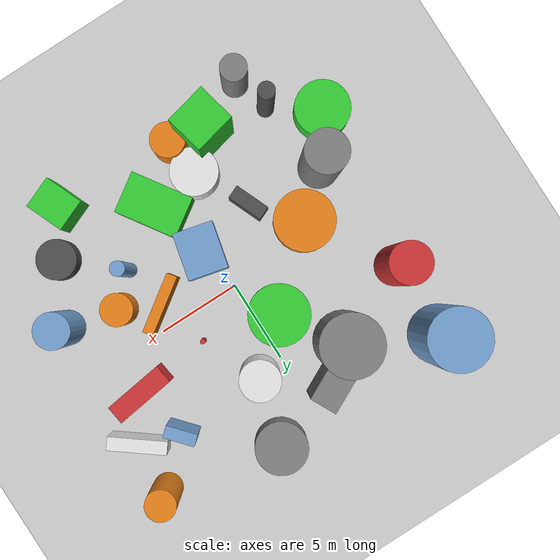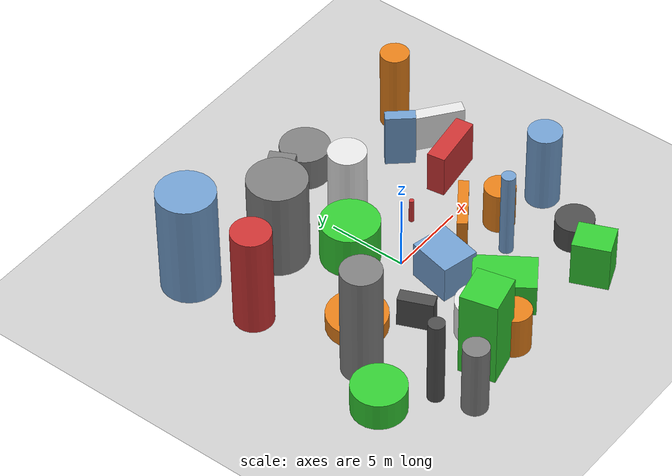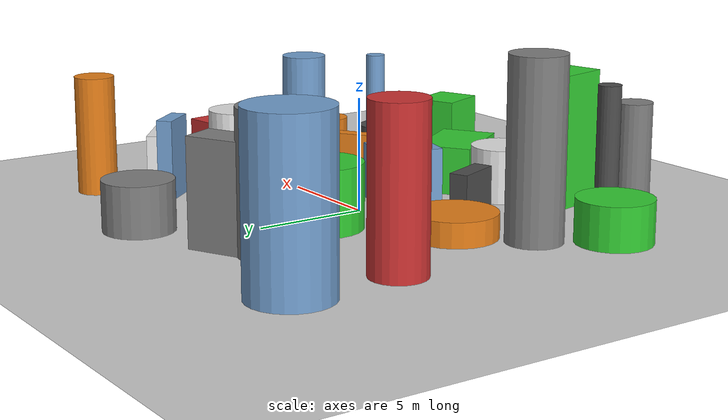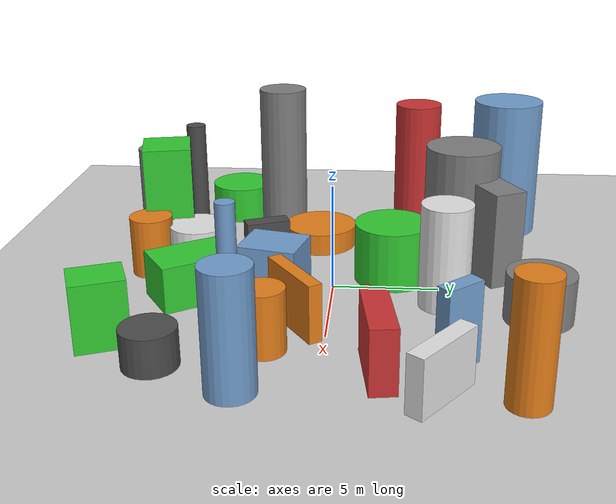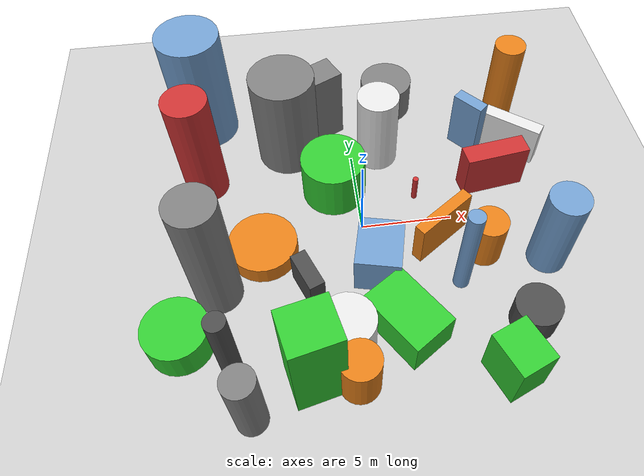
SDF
<?xml version='1.0'?>
<sdf version='1.6'>
  <world name='default'>
    <!-- Sun light -->
    <light name='sun' type='directional'>
      <cast_shadows>1</cast_shadows>
      <pose>0 0 10 0 0 0</pose>
      <diffuse>0.8 0.8 0.8 1</diffuse>
      <specular>0.2 0.2 0.2 1</specular>
      <attenuation>
        <range>1000</range>
        <constant>0.9</constant>
        <linear>0.01</linear>
        <quadratic>0.001</quadratic>
      </attenuation>
      <direction>-0.5 0.1 -0.9</direction>
    </light>

    <!-- Ground plane -->
    <model name='ground_plane'>
      <static>1</static>
      <link name='link'>
        <collision name='collision'>
          <geometry>
            <plane>
              <normal>0 0 1</normal>
              <size>100 100</size>
            </plane>
          </geometry>
          <surface>
            <contact>
              <collide_bitmask>65535</collide_bitmask>
              <ode/>
            </contact>
            <friction>
              <ode>
                <mu>100</mu>
                <mu2>50</mu2>
              </ode>
              <torsional><ode/></torsional>
            </friction>
            <bounce/>
          </surface>
          <max_contacts>10</max_contacts>
        </collision>
        <visual name='visual'>
          <cast_shadows>0</cast_shadows>
          <geometry>
            <plane>
              <normal>0 0 1</normal>
              <size>100 100</size>
            </plane>
          </geometry>
          <material>
            <script>
              <uri>file://media/materials/scripts/gazebo.material</uri>
              <n>Gazebo/Grey</n>
            </script>
          </material>
        </visual>
      </link>
    </model>

    <!-- Environment -->
    <magnetic_field>6e-06 2.3e-05 -4.2e-05</magnetic_field>
    <atmosphere type='adiabatic'/>
    <physics name='default_physics' default='0' type='ode'>
      <gravity>0 0 -9.8</gravity>
      <max_step_size>0.004</max_step_size>
      <real_time_factor>1</real_time_factor>
      <real_time_update_rate>250</real_time_update_rate>
    </physics>
    <scene>
      <ambient>0.4 0.4 0.4 1</ambient>
      <background>0.7 0.7 0.7 1</background>
      <shadows>1</shadows>
    </scene>
    <wind/>
    <spherical_coordinates>
      <surface_model>EARTH_WGS84</surface_model>
      <latitude_deg>0</latitude_deg>
      <longitude_deg>0</longitude_deg>
      <elevation>0</elevation>
      <heading_deg>0</heading_deg>
    </spherical_coordinates>

    <!-- ============ OBSTACLES (29) ============ -->
    <model name='obs_00'>
      <static>1</static>
      <link name='link'>
        <visual name='visual'>
          <geometry>
            <cylinder>
              <radius>0.5015</radius>
              <length>5.8804</length>
            </cylinder>
          </geometry>
          <material>
            <script>
              <n>Gazebo/DarkGrey</n>
              <uri>file://media/materials/scripts/gazebo.material</uri>
            </script>
            <ambient>0.3 0.3 0.3 1</ambient>
          </material>
        </visual>
        <collision name='collision'>
          <geometry>
            <cylinder>
              <radius>0.5015</radius>
              <length>5.8804</length>
            </cylinder>
          </geometry>
          <max_contacts>10</max_contacts>
          <surface>
            <contact><ode/></contact>
            <bounce/>
            <friction>
              <ode><mu>1</mu><mu2>1</mu2></ode>
              <torsional><ode/></torsional>
            </friction>
          </surface>
        </collision>
      </link>
      <pose>-7.1669 -7.7816 2.9402 0 0 0.6458</pose>
    </model>

    <model name='obs_01'>
      <static>1</static>
      <link name='link'>
        <visual name='visual'>
          <geometry>
            <box>
              <size>2.3904 2.8121 2.4870</size>
            </box>
          </geometry>
          <material>
            <script>
              <n>Gazebo/Blue</n>
              <uri>file://media/materials/scripts/gazebo.material</uri>
            </script>
            <ambient>0.447 0.624 0.812 1</ambient>
          </material>
        </visual>
        <collision name='collision'>
          <geometry>
            <box>
              <size>2.3904 2.8121 2.4870</size>
            </box>
          </geometry>
          <max_contacts>10</max_contacts>
          <surface>
            <contact><ode/></contact>
            <bounce/>
            <friction>
              <ode><mu>1</mu><mu2>1</mu2></ode>
              <torsional><ode/></torsional>
            </friction>
          </surface>
        </collision>
      </link>
      <pose>0.5259 -2.7022 1.2435 0 0 2.9078</pose>
    </model>

    <model name='obs_02'>
      <static>1</static>
      <link name='link'>
        <visual name='visual'>
          <geometry>
            <cylinder>
              <radius>1.2078</radius>
              <length>6.8790</length>
            </cylinder>
          </geometry>
          <material>
            <script>
              <n>Gazebo/Red</n>
              <uri>file://media/materials/scripts/gazebo.material</uri>
            </script>
            <ambient>0.8 0.2 0.2 1</ambient>
          </material>
        </visual>
        <collision name='collision'>
          <geometry>
            <cylinder>
              <radius>1.2078</radius>
              <length>6.8790</length>
            </cylinder>
          </geometry>
          <max_contacts>10</max_contacts>
          <surface>
            <contact><ode/></contact>
            <bounce/>
            <friction>
              <ode><mu>1</mu><mu2>1</mu2></ode>
              <torsional><ode/></torsional>
            </friction>
          </surface>
        </collision>
      </link>
      <pose>-8.5494 4.0908 3.4395 0 0 0.1559</pose>
    </model>

    <model name='obs_03'>
      <static>1</static>
      <link name='link'>
        <visual name='visual'>
          <geometry>
            <cylinder>
              <radius>0.1571</radius>
              <length>1.6134</length>
            </cylinder>
          </geometry>
          <material>
            <script>
              <n>Gazebo/Red</n>
              <uri>file://media/materials/scripts/gazebo.material</uri>
            </script>
            <ambient>0.8 0.2 0.2 1</ambient>
          </material>
        </visual>
        <collision name='collision'>
          <geometry>
            <cylinder>
              <radius>0.1571</radius>
              <length>1.6134</length>
            </cylinder>
          </geometry>
          <max_contacts>10</max_contacts>
          <surface>
            <contact><ode/></contact>
            <bounce/>
            <friction>
              <ode><mu>1</mu><mu2>1</mu2></ode>
              <torsional><ode/></torsional>
            </friction>
          </surface>
        </collision>
      </link>
      <pose>3.2428 1.7203 0.8067 0 0 0.1712</pose>
    </model>

    <model name='obs_04'>
      <static>1</static>
      <link name='link'>
        <visual name='visual'>
          <geometry>
            <box>
              <size>2.1811 0.8395 2.0348</size>
            </box>
          </geometry>
          <material>
            <script>
              <n>Gazebo/DarkGrey</n>
              <uri>file://media/materials/scripts/gazebo.material</uri>
            </script>
            <ambient>0.3 0.3 0.3 1</ambient>
          </material>
        </visual>
        <collision name='collision'>
          <geometry>
            <box>
              <size>2.1811 0.8395 2.0348</size>
            </box>
          </geometry>
          <max_contacts>10</max_contacts>
          <surface>
            <contact><ode/></contact>
            <bounce/>
            <friction>
              <ode><mu>1</mu><mu2>1</mu2></ode>
              <torsional><ode/></torsional>
            </friction>
          </surface>
        </collision>
      </link>
      <pose>-3.2688 -3.5479 1.0174 0 0 1.9638</pose>
    </model>

    <model name='obs_05'>
      <static>1</static>
      <link name='link'>
        <visual name='visual'>
          <geometry>
            <box>
              <size>0.7868 3.4532 2.5418</size>
            </box>
          </geometry>
          <material>
            <script>
              <n>Gazebo/White</n>
              <uri>file://media/materials/scripts/gazebo.material</uri>
            </script>
            <ambient>0.9 0.9 0.9 1</ambient>
          </material>
        </visual>
        <collision name='collision'>
          <geometry>
            <box>
              <size>0.7868 3.4532 2.5418</size>
            </box>
          </geometry>
          <max_contacts>10</max_contacts>
          <surface>
            <contact><ode/></contact>
            <bounce/>
            <friction>
              <ode><mu>1</mu><mu2>1</mu2></ode>
              <torsional><ode/></torsional>
            </friction>
          </surface>
        </collision>
      </link>
      <pose>9.5172 4.6470 1.2709 0 0 0.9168</pose>
    </model>

    <model name='obs_06'>
      <static>1</static>
      <link name='link'>
        <visual name='visual'>
          <geometry>
            <cylinder>
              <radius>1.8055</radius>
              <length>2.8550</length>
            </cylinder>
          </geometry>
          <material>
            <script>
              <n>Gazebo/Green</n>
              <uri>file://media/materials/scripts/gazebo.material</uri>
            </script>
            <ambient>0.2 0.8 0.2 1</ambient>
          </material>
        </visual>
        <collision name='collision'>
          <geometry>
            <cylinder>
              <radius>1.8055</radius>
              <length>2.8550</length>
            </cylinder>
          </geometry>
          <max_contacts>10</max_contacts>
          <surface>
            <contact><ode/></contact>
            <bounce/>
            <friction>
              <ode><mu>1</mu><mu2>1</mu2></ode>
              <torsional><ode/></torsional>
            </friction>
          </surface>
        </collision>
      </link>
      <pose>-1.2626 2.7853 1.4275 0 0 1.4795</pose>
    </model>

    <model name='obs_07'>
      <static>1</static>
      <link name='link'>
        <visual name='visual'>
          <geometry>
            <box>
              <size>1.1471 3.5992 2.8470</size>
            </box>
          </geometry>
          <material>
            <script>
              <n>Gazebo/Red</n>
              <uri>file://media/materials/scripts/gazebo.material</uri>
            </script>
            <ambient>0.8 0.2 0.2 1</ambient>
          </material>
        </visual>
        <collision name='collision'>
          <geometry>
            <box>
              <size>1.1471 3.5992 2.8470</size>
            </box>
          </geometry>
          <max_contacts>10</max_contacts>
          <surface>
            <contact><ode/></contact>
            <bounce/>
            <friction>
              <ode><mu>1</mu><mu2>1</mu2></ode>
              <torsional><ode/></torsional>
            </friction>
          </surface>
        </collision>
      </link>
      <pose>7.7920 2.2742 1.4235 0 0 1.7094</pose>
    </model>

    <model name='obs_08'>
      <static>1</static>
      <link name='link'>
        <visual name='visual'>
          <geometry>
            <cylinder>
              <radius>0.9635</radius>
              <length>2.8438</length>
            </cylinder>
          </geometry>
          <material>
            <script>
              <n>Gazebo/Orange</n>
              <uri>file://media/materials/scripts/gazebo.material</uri>
            </script>
            <ambient>0.9 0.5 0.1 1</ambient>
          </material>
        </visual>
        <collision name='collision'>
          <geometry>
            <cylinder>
              <radius>0.9635</radius>
              <length>2.8438</length>
            </cylinder>
          </geometry>
          <max_contacts>10</max_contacts>
          <surface>
            <contact><ode/></contact>
            <bounce/>
            <friction>
              <ode><mu>1</mu><mu2>1</mu2></ode>
              <torsional><ode/></torsional>
            </friction>
          </surface>
        </collision>
      </link>
      <pose>6.2891 -2.4323 1.4219 0 0 0.1402</pose>
    </model>

    <model name='obs_09'>
      <static>1</static>
      <link name='link'>
        <visual name='visual'>
          <geometry>
            <cylinder>
              <radius>0.4296</radius>
              <length>5.8753</length>
            </cylinder>
          </geometry>
          <material>
            <script>
              <n>Gazebo/Blue</n>
              <uri>file://media/materials/scripts/gazebo.material</uri>
            </script>
            <ambient>0.447 0.624 0.812 1</ambient>
          </material>
        </visual>
        <collision name='collision'>
          <geometry>
            <cylinder>
              <radius>0.4296</radius>
              <length>5.8753</length>
            </cylinder>
          </geometry>
          <max_contacts>10</max_contacts>
          <surface>
            <contact><ode/></contact>
            <bounce/>
            <friction>
              <ode><mu>1</mu><mu2>1</mu2></ode>
              <torsional><ode/></torsional>
            </friction>
          </surface>
        </collision>
      </link>
      <pose>4.6799 -4.1097 2.9376 0 0 1.7726</pose>
    </model>

    <model name='obs_10'>
      <static>1</static>
      <link name='link'>
        <visual name='visual'>
          <geometry>
            <cylinder>
              <radius>0.7860</radius>
              <length>4.7901</length>
            </cylinder>
          </geometry>
          <material>
            <script>
              <n>Gazebo/Grey</n>
              <uri>file://media/materials/scripts/gazebo.material</uri>
            </script>
            <ambient>0.5 0.5 0.5 1</ambient>
          </material>
        </visual>
        <collision name='collision'>
          <geometry>
            <cylinder>
              <radius>0.7860</radius>
              <length>4.7901</length>
            </cylinder>
          </geometry>
          <max_contacts>10</max_contacts>
          <surface>
            <contact><ode/></contact>
            <bounce/>
            <friction>
              <ode><mu>1</mu><mu2>1</mu2></ode>
              <torsional><ode/></torsional>
            </friction>
          </surface>
        </collision>
      </link>
      <pose>-6.4458 -9.9640 2.3951 0 0 0.2693</pose>
    </model>

    <model name='obs_11'>
      <static>1</static>
      <link name='link'>
        <visual name='visual'>
          <geometry>
            <box>
              <size>0.7134 1.8549 3.6129</size>
            </box>
          </geometry>
          <material>
            <script>
              <n>Gazebo/Blue</n>
              <uri>file://media/materials/scripts/gazebo.material</uri>
            </script>
            <ambient>0.447 0.624 0.812 1</ambient>
          </material>
        </visual>
        <collision name='collision'>
          <geometry>
            <box>
              <size>0.7134 1.8549 3.6129</size>
            </box>
          </geometry>
          <max_contacts>10</max_contacts>
          <surface>
            <contact><ode/></contact>
            <bounce/>
            <friction>
              <ode><mu>1</mu><mu2>1</mu2></ode>
              <torsional><ode/></torsional>
            </friction>
          </surface>
        </collision>
      </link>
      <pose>7.0151 5.4166 1.8065 0 0 0.7148</pose>
    </model>

    <model name='obs_12'>
      <static>1</static>
      <link name='link'>
        <visual name='visual'>
          <geometry>
            <box>
              <size>3.7773 2.5045 2.1782</size>
            </box>
          </geometry>
          <material>
            <script>
              <n>Gazebo/Green</n>
              <uri>file://media/materials/scripts/gazebo.material</uri>
            </script>
            <ambient>0.2 0.8 0.2 1</ambient>
          </material>
        </visual>
        <collision name='collision'>
          <geometry>
            <box>
              <size>3.7773 2.5045 2.1782</size>
            </box>
          </geometry>
          <max_contacts>10</max_contacts>
          <surface>
            <contact><ode/></contact>
            <bounce/>
            <friction>
              <ode><mu>1</mu><mu2>1</mu2></ode>
              <torsional><ode/></torsional>
            </friction>
          </surface>
        </collision>
      </link>
      <pose>1.3497 -6.3584 1.0891 0 0 2.1585</pose>
    </model>

    <model name='obs_13'>
      <static>1</static>
      <link name='link'>
        <visual name='visual'>
          <geometry>
            <cylinder>
              <radius>1.8201</radius>
              <length>6.0001</length>
            </cylinder>
          </geometry>
          <material>
            <script>
              <n>Gazebo/Grey</n>
              <uri>file://media/materials/scripts/gazebo.material</uri>
            </script>
            <ambient>0.5 0.5 0.5 1</ambient>
          </material>
        </visual>
        <collision name='collision'>
          <geometry>
            <cylinder>
              <radius>1.8201</radius>
              <length>6.0001</length>
            </cylinder>
          </geometry>
          <max_contacts>10</max_contacts>
          <surface>
            <contact><ode/></contact>
            <bounce/>
            <friction>
              <ode><mu>1</mu><mu2>1</mu2></ode>
              <torsional><ode/></torsional>
            </friction>
          </surface>
        </collision>
      </link>
      <pose>-3.6357 6.1761 3.0001 0 0 0.2480</pose>
    </model>

    <model name='obs_14'>
      <static>1</static>
      <link name='link'>
        <visual name='visual'>
          <geometry>
            <box>
              <size>2.3089 2.5002 5.9138</size>
            </box>
          </geometry>
          <material>
            <script>
              <n>Gazebo/Green</n>
              <uri>file://media/materials/scripts/gazebo.material</uri>
            </script>
            <ambient>0.2 0.8 0.2 1</ambient>
          </material>
        </visual>
        <collision name='collision'>
          <geometry>
            <box>
              <size>2.3089 2.5002 5.9138</size>
            </box>
          </geometry>
          <max_contacts>10</max_contacts>
          <surface>
            <contact><ode/></contact>
            <bounce/>
            <friction>
              <ode><mu>1</mu><mu2>1</mu2></ode>
              <torsional><ode/></torsional>
            </friction>
          </surface>
        </collision>
      </link>
      <pose>-3.3766 -8.4439 2.9569 0 0 1.7945</pose>
    </model>

    <model name='obs_15'>
      <static>1</static>
      <link name='link'>
        <visual name='visual'>
          <geometry>
            <cylinder>
              <radius>1.5508</radius>
              <length>2.2102</length>
            </cylinder>
          </geometry>
          <material>
            <script>
              <n>Gazebo/Grey</n>
              <uri>file://media/materials/scripts/gazebo.material</uri>
            </script>
            <ambient>0.5 0.5 0.5 1</ambient>
          </material>
        </visual>
        <collision name='collision'>
          <geometry>
            <cylinder>
              <radius>1.5508</radius>
              <length>2.2102</length>
            </cylinder>
          </geometry>
          <max_contacts>10</max_contacts>
          <surface>
            <contact><ode/></contact>
            <bounce/>
            <friction>
              <ode><mu>1</mu><mu2>1</mu2></ode>
              <torsional><ode/></torsional>
            </friction>
          </surface>
        </collision>
      </link>
      <pose>2.7237 9.2616 1.1051 0 0 0.3779</pose>
    </model>

    <model name='obs_16'>
      <static>1</static>
      <link name='link'>
        <visual name='visual'>
          <geometry>
            <cylinder>
              <radius>1.6457</radius>
              <length>1.8833</length>
            </cylinder>
          </geometry>
          <material>
            <script>
              <n>Gazebo/Green</n>
              <uri>file://media/materials/scripts/gazebo.material</uri>
            </script>
            <ambient>0.2 0.8 0.2 1</ambient>
          </material>
        </visual>
        <collision name='collision'>
          <geometry>
            <cylinder>
              <radius>1.6457</radius>
              <length>1.8833</length>
            </cylinder>
          </geometry>
          <max_contacts>10</max_contacts>
          <surface>
            <contact><ode/></contact>
            <bounce/>
            <friction>
              <ode><mu>1</mu><mu2>1</mu2></ode>
              <torsional><ode/></torsional>
            </friction>
          </surface>
        </collision>
      </link>
      <pose>-9.7721 -5.8063 0.9417 0 0 3.0541</pose>
    </model>

    <model name='obs_17'>
      <static>1</static>
      <link name='link'>
        <visual name='visual'>
          <geometry>
            <cylinder>
              <radius>1.4138</radius>
              <length>2.4134</length>
            </cylinder>
          </geometry>
          <material>
            <script>
              <n>Gazebo/White</n>
              <uri>file://media/materials/scripts/gazebo.material</uri>
            </script>
            <ambient>0.9 0.9 0.9 1</ambient>
          </material>
        </visual>
        <collision name='collision'>
          <geometry>
            <cylinder>
              <radius>1.4138</radius>
              <length>2.4134</length>
            </cylinder>
          </geometry>
          <max_contacts>10</max_contacts>
          <surface>
            <contact><ode/></contact>
            <bounce/>
            <friction>
              <ode><mu>1</mu><mu2>1</mu2></ode>
              <torsional><ode/></torsional>
            </friction>
          </surface>
        </collision>
      </link>
      <pose>-1.6069 -6.6732 1.2067 0 0 0.2462</pose>
    </model>

    <model name='obs_18'>
      <static>1</static>
      <link name='link'>
        <visual name='visual'>
          <geometry>
            <box>
              <size>2.5827 1.6191 4.6355</size>
            </box>
          </geometry>
          <material>
            <script>
              <n>Gazebo/Grey</n>
              <uri>file://media/materials/scripts/gazebo.material</uri>
            </script>
            <ambient>0.5 0.5 0.5 1</ambient>
          </material>
        </visual>
        <collision name='collision'>
          <geometry>
            <box>
              <size>2.5827 1.6191 4.6355</size>
            </box>
          </geometry>
          <max_contacts>10</max_contacts>
          <surface>
            <contact><ode/></contact>
            <bounce/>
            <friction>
              <ode><mu>1</mu><mu2>1</mu2></ode>
              <torsional><ode/></torsional>
            </friction>
          </surface>
        </collision>
      </link>
      <pose>-1.7196 7.6354 2.3178 0 0 0.4646</pose>
    </model>

    <model name='obs_19'>
      <static>1</static>
      <link name='link'>
        <visual name='visual'>
          <geometry>
            <cylinder>
              <radius>1.1793</radius>
              <length>4.8644</length>
            </cylinder>
          </geometry>
          <material>
            <script>
              <n>Gazebo/White</n>
              <uri>file://media/materials/scripts/gazebo.material</uri>
            </script>
            <ambient>0.9 0.9 0.9 1</ambient>
          </material>
        </visual>
        <collision name='collision'>
          <geometry>
            <cylinder>
              <radius>1.1793</radius>
              <length>4.8644</length>
            </cylinder>
          </geometry>
          <max_contacts>10</max_contacts>
          <surface>
            <contact><ode/></contact>
            <bounce/>
            <friction>
              <ode><mu>1</mu><mu2>1</mu2></ode>
              <torsional><ode/></torsional>
            </friction>
          </surface>
        </collision>
      </link>
      <pose>1.5611 5.1649 2.4322 0 0 0.2734</pose>
    </model>

    <model name='obs_20'>
      <static>1</static>
      <link name='link'>
        <visual name='visual'>
          <geometry>
            <cylinder>
              <radius>1.8467</radius>
              <length>1.0865</length>
            </cylinder>
          </geometry>
          <material>
            <script>
              <n>Gazebo/Orange</n>
              <uri>file://media/materials/scripts/gazebo.material</uri>
            </script>
            <ambient>0.9 0.5 0.1 1</ambient>
          </material>
        </visual>
        <collision name='collision'>
          <geometry>
            <cylinder>
              <radius>1.8467</radius>
              <length>1.0865</length>
            </cylinder>
          </geometry>
          <max_contacts>10</max_contacts>
          <surface>
            <contact><ode/></contact>
            <bounce/>
            <friction>
              <ode><mu>1</mu><mu2>1</mu2></ode>
              <torsional><ode/></torsional>
            </friction>
          </surface>
        </collision>
      </link>
      <pose>-5.4883 -0.9743 0.5433 0 0 1.6326</pose>
    </model>

    <model name='obs_21'>
      <static>1</static>
      <link name='link'>
        <visual name='visual'>
          <geometry>
            <box>
              <size>2.3290 1.9686 3.0722</size>
            </box>
          </geometry>
          <material>
            <script>
              <n>Gazebo/Green</n>
              <uri>file://media/materials/scripts/gazebo.material</uri>
            </script>
            <ambient>0.2 0.8 0.2 1</ambient>
          </material>
        </visual>
        <collision name='collision'>
          <geometry>
            <box>
              <size>2.3290 1.9686 3.0722</size>
            </box>
          </geometry>
          <max_contacts>10</max_contacts>
          <surface>
            <contact><ode/></contact>
            <bounce/>
            <friction>
              <ode><mu>1</mu><mu2>1</mu2></ode>
              <torsional><ode/></torsional>
            </friction>
          </surface>
        </collision>
      </link>
      <pose>5.9839 -9.3317 1.5361 0 0 1.9574</pose>
    </model>

    <model name='obs_22'>
      <static>1</static>
      <link name='link'>
        <visual name='visual'>
          <geometry>
            <cylinder>
              <radius>1.2280</radius>
              <length>7.7538</length>
            </cylinder>
          </geometry>
          <material>
            <script>
              <n>Gazebo/Grey</n>
              <uri>file://media/materials/scripts/gazebo.material</uri>
            </script>
            <ambient>0.5 0.5 0.5 1</ambient>
          </material>
        </visual>
        <collision name='collision'>
          <geometry>
            <cylinder>
              <radius>1.2280</radius>
              <length>7.7538</length>
            </cylinder>
          </geometry>
          <max_contacts>10</max_contacts>
          <surface>
            <contact><ode/></contact>
            <bounce/>
            <friction>
              <ode><mu>1</mu><mu2>1</mu2></ode>
              <torsional><ode/></torsional>
            </friction>
          </surface>
        </collision>
      </link>
      <pose>-7.9055 -3.1638 3.8769 0 0 1.7800</pose>
    </model>

    <model name='obs_23'>
      <static>1</static>
      <link name='link'>
        <visual name='visual'>
          <geometry>
            <cylinder>
              <radius>1.1910</radius>
              <length>1.7069</length>
            </cylinder>
          </geometry>
          <material>
            <script>
              <n>Gazebo/DarkGrey</n>
              <uri>file://media/materials/scripts/gazebo.material</uri>
            </script>
            <ambient>0.3 0.3 0.3 1</ambient>
          </material>
        </visual>
        <collision name='collision'>
          <geometry>
            <cylinder>
              <radius>1.1910</radius>
              <length>1.7069</length>
            </cylinder>
          </geometry>
          <max_contacts>10</max_contacts>
          <surface>
            <contact><ode/></contact>
            <bounce/>
            <friction>
              <ode><mu>1</mu><mu2>1</mu2></ode>
              <torsional><ode/></torsional>
            </friction>
          </surface>
        </collision>
      </link>
      <pose>7.7586 -6.7819 0.8535 0 0 2.9057</pose>
    </model>

    <model name='obs_24'>
      <static>1</static>
      <link name='link'>
        <visual name='visual'>
          <geometry>
            <cylinder>
              <radius>1.7783</radius>
              <length>7.1453</length>
            </cylinder>
          </geometry>
          <material>
            <script>
              <n>Gazebo/Blue</n>
              <uri>file://media/materials/scripts/gazebo.material</uri>
            </script>
            <ambient>0.447 0.624 0.812 1</ambient>
          </material>
        </visual>
        <collision name='collision'>
          <geometry>
            <cylinder>
              <radius>1.7783</radius>
              <length>7.1453</length>
            </cylinder>
          </geometry>
          <max_contacts>10</max_contacts>
          <surface>
            <contact><ode/></contact>
            <bounce/>
            <friction>
              <ode><mu>1</mu><mu2>1</mu2></ode>
              <torsional><ode/></torsional>
            </friction>
          </surface>
        </collision>
      </link>
      <pose>-8.5000 8.8367 3.5726 0 0 2.7253</pose>
    </model>

    <model name='obs_25'>
      <static>1</static>
      <link name='link'>
        <visual name='visual'>
          <geometry>
            <cylinder>
              <radius>1.0483</radius>
              <length>5.2627</length>
            </cylinder>
          </geometry>
          <material>
            <script>
              <n>Gazebo/Blue</n>
              <uri>file://media/materials/scripts/gazebo.material</uri>
            </script>
            <ambient>0.447 0.624 0.812 1</ambient>
          </material>
        </visual>
        <collision name='collision'>
          <geometry>
            <cylinder>
              <radius>1.0483</radius>
              <length>5.2627</length>
            </cylinder>
          </geometry>
          <max_contacts>10</max_contacts>
          <surface>
            <contact><ode/></contact>
            <bounce/>
            <friction>
              <ode><mu>1</mu><mu2>1</mu2></ode>
              <torsional><ode/></torsional>
            </friction>
          </surface>
        </collision>
      </link>
      <pose>9.5608 -3.2410 2.6314 0 0 1.2034</pose>
    </model>

    <model name='obs_26'>
      <static>1</static>
      <link name='link'>
        <visual name='visual'>
          <geometry>
            <cylinder>
              <radius>0.8955</radius>
              <length>5.3277</length>
            </cylinder>
          </geometry>
          <material>
            <script>
              <n>Gazebo/Orange</n>
              <uri>file://media/materials/scripts/gazebo.material</uri>
            </script>
            <ambient>0.9 0.5 0.1 1</ambient>
          </material>
        </visual>
        <collision name='collision'>
          <geometry>
            <cylinder>
              <radius>0.8955</radius>
              <length>5.3277</length>
            </cylinder>
          </geometry>
          <max_contacts>10</max_contacts>
          <surface>
            <contact><ode/></contact>
            <bounce/>
            <friction>
              <ode><mu>1</mu><mu2>1</mu2></ode>
              <torsional><ode/></torsional>
            </friction>
          </surface>
        </collision>
      </link>
      <pose>9.7055 7.8645 2.6639 0 0 0.5410</pose>
    </model>

    <model name='obs_27'>
      <static>1</static>
      <link name='link'>
        <visual name='visual'>
          <geometry>
            <box>
              <size>0.6357 3.6135 2.6575</size>
            </box>
          </geometry>
          <material>
            <script>
              <n>Gazebo/Orange</n>
              <uri>file://media/materials/scripts/gazebo.material</uri>
            </script>
            <ambient>0.9 0.5 0.1 1</ambient>
          </material>
        </visual>
        <collision name='collision'>
          <geometry>
            <box>
              <size>0.6357 3.6135 2.6575</size>
            </box>
          </geometry>
          <max_contacts>10</max_contacts>
          <surface>
            <contact><ode/></contact>
            <bounce/>
            <friction>
              <ode><mu>1</mu><mu2>1</mu2></ode>
              <torsional><ode/></torsional>
            </friction>
          </surface>
        </collision>
      </link>
      <pose>4.0901 -1.3735 1.3287 0 0 2.1792</pose>
    </model>

    <model name='obs_28'>
      <static>1</static>
      <link name='link'>
        <visual name='visual'>
          <geometry>
            <cylinder>
              <radius>1.0292</radius>
              <length>2.8801</length>
            </cylinder>
          </geometry>
          <material>
            <script>
              <n>Gazebo/Orange</n>
              <uri>file://media/materials/scripts/gazebo.material</uri>
            </script>
            <ambient>0.9 0.5 0.1 1</ambient>
          </material>
        </visual>
        <collision name='collision'>
          <geometry>
            <cylinder>
              <radius>1.0292</radius>
              <length>2.8801</length>
            </cylinder>
          </geometry>
          <max_contacts>10</max_contacts>
          <surface>
            <contact><ode/></contact>
            <bounce/>
            <friction>
              <ode><mu>1</mu><mu2>1</mu2></ode>
              <torsional><ode/></torsional>
            </friction>
          </surface>
        </collision>
      </link>
      <pose>-1.3160 -8.9289 1.4400 0 0 0.1549</pose>
    </model>

    <!-- GUI camera -->
    <gui fullscreen='0'>
      <camera name='user_camera'>
        <pose>-15 0 18 0 0.85 0.15</pose>
        <view_controller>orbit</view_controller>
        <projection_type>perspective</projection_type>
      </camera>
    </gui>
  </world>
</sdf>
